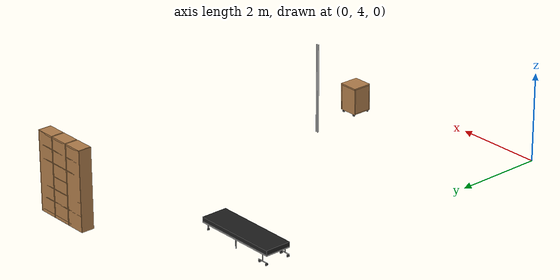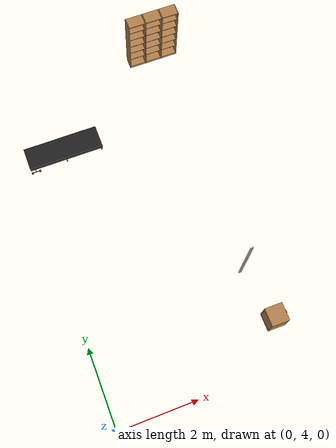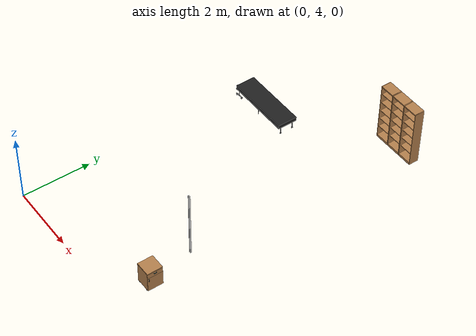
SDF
<sdf version="1.6">
 <world name="apartment">
  <model name="door_stopper_x05y09a">
   <link name="door_frame">
    <visual name="stopper">
     <pose>0.0225 0.0175 1.025 0 -0 0</pose>
     <geometry><box><size>0.01 0.035 2.05</size></box></geometry>
     <material>
      <script><uri>model://base_materials/color/scripts</uri><name>hsr_color/white</name></script>
     </material>
    </visual>
    <collision name="collision_frame_1">
     <pose>0.0225 0.0175 1.025 0 -0 0</pose>
     <geometry><box><size>0.01 0.035 2.05</size></box></geometry>
    </collision>
    <visual name="frame_2">
     <pose>-0.0225 0.0175 1.025 0 -0 0</pose>
     <geometry><box><size>0.01 0.035 2.05</size></box></geometry>
     <material>
      <script><uri>model://base_materials/color/scripts</uri><name>hsr_color/white</name></script>
     </material>
    </visual>
    <collision name="collision_frame_2">
     <pose>-0.0225 0.0175 1.025 0 -0 0</pose>
     <geometry><box><size>0.01 0.035 2.05</size></box></geometry>
    </collision>
   </link>
   <static>1</static>
   <pose>4.075 6.425 0 0 -0 0</pose>
  </model>
  <model name="wagon">
   <link name="link">
    <inertial>
     <mass>10</mass>
     <inertia><ixx>1</ixx><ixy>0</ixy><ixz>0</ixz><iyy>1</iyy><iyz>0</iyz><izz>1</izz></inertia>
    </inertial>
    <visual name="left_board">
     <pose>-0.2325 0.01 0.345 0 -0 0</pose>
     <geometry><box><size>0.415 0.02 0.59</size></box></geometry>
     <material>
      <script><uri>model://base_materials/wood/scripts/wood.material</uri><name>base_materials/wood</name></script>
     </material>
    </visual>
    <collision name="collision_left_board">
     <pose>-0.2325 0.01 0.345 0 -0 0</pose>
     <geometry><box><size>0.415 0.02 0.59</size></box></geometry>
    </collision>
    <visual name="right_board">
     <pose>-0.2325 0.4325 0.345 0 -0 0</pose>
     <geometry><box><size>0.415 0.02 0.59</size></box></geometry>
     <material>
      <script><uri>model://base_materials/wood/scripts/wood.material</uri><name>base_materials/wood</name></script>
     </material>
    </visual>
    <collision name="collision_right_board">
     <pose>-0.2325 0.4325 0.345 0 -0 0</pose>
     <geometry><box><size>0.415 0.02 0.59</size></box></geometry>
    </collision>
    <visual name="top_board">
     <pose>-0.22 0.2225 0.655 0 -0 0</pose>
     <geometry><box><size>0.44 0.445 0.03</size></box></geometry>
     <material>
      <script><uri>model://base_materials/wood/scripts/wood.material</uri><name>base_materials/wood</name></script>
     </material>
    </visual>
    <collision name="collision_top_board">
     <pose>-0.22 0.2225 0.655 0 -0 0</pose>
     <geometry><box><size>0.44 0.445 0.03</size></box></geometry>
    </collision>
    <visual name="back_board">
     <pose>-0.425 0.2225 0.345 0 -0 0</pose>
     <geometry><box><size>0.02 0.405 0.59</size></box></geometry>
     <material>
      <script><uri>model://base_materials/wood/scripts/wood.material</uri><name>base_materials/wood</name></script>
     </material>
    </visual>
    <collision name="collision_back_board">
     <pose>-0.425 0.2225 0.345 0 -0 0</pose>
     <geometry><box><size>0.02 0.405 0.59</size></box></geometry>
    </collision>
    <visual name="bottom_board">
     <pose>-0.2325 0.2225 0.06 0 -0 0</pose>
     <geometry><box><size>0.415 0.405 0.02</size></box></geometry>
     <material>
      <script><uri>model://base_materials/wood/scripts/wood.material</uri><name>base_materials/wood</name></script>
     </material>
    </visual>
    <collision name="collision_bottom_board">
     <pose>-0.2325 0.2225 0.06 0 -0 0</pose>
     <geometry><box><size>0.415 0.405 0.02</size></box></geometry>
    </collision>
    <visual name="1st_drawer">
     <pose>-0.0125 0.2225 0.57 0 -0 0</pose>
     <geometry><box><size>0.025 0.445 0.14</size></box></geometry>
     <material>
      <script><uri>model://base_materials/wood/scripts/wood.material</uri><name>base_materials/wood</name></script>
     </material>
    </visual>
    <collision name="collision_1st_drawer">
     <pose>-0.0125 0.2225 0.57 0 -0 0</pose>
     <geometry><box><size>0.025 0.445 0.14</size></box></geometry>
    </collision>
    <visual name="1st_drawer_handle_l1">
     <pose>0.0115 0.1895 0.6 3.14159 1.57079 3.14159</pose>
     <geometry><cylinder><radius>0.007</radius><length>0.023</length></cylinder></geometry>
     <material>
      <ambient>0.18431 0.3098 0.3098 1</ambient>
      <diffuse>0.18431 0.3098 0.3098 1</diffuse>
      <specular>0.1 0.1 0.1 1</specular>
     </material>
    </visual>
    <collision name="collision_1st_drawer_handle_l1">
     <pose>0.0115 0.1895 0.6 3.14159 1.57079 3.14159</pose>
     <geometry><cylinder><radius>0.007</radius><length>0.023</length></cylinder></geometry>
    </collision>
    <visual name="1st_drawer_handle_l2">
     <pose>0.023 0.1895 0.6 0 -0 0</pose>
     <geometry><sphere><radius>0.007</radius></sphere></geometry>
     <material>
      <ambient>0.18431 0.3098 0.3098 1</ambient>
      <diffuse>0.18431 0.3098 0.3098 1</diffuse>
      <specular>0.1 0.1 0.1 1</specular>
     </material>
    </visual>
    <collision name="collision_1st_drawer_handle_l2">
     <pose>0.023 0.1895 0.6 0 -0 0</pose>
     <geometry><sphere><radius>0.007</radius></sphere></geometry>
    </collision>
    <visual name="1st_drawer_handle_r1">
     <pose>0.0115 0.2555 0.6 3.14159 1.57079 3.14159</pose>
     <geometry><cylinder><radius>0.007</radius><length>0.023</length></cylinder></geometry>
     <material>
      <ambient>0.18431 0.3098 0.3098 1</ambient>
      <diffuse>0.18431 0.3098 0.3098 1</diffuse>
      <specular>0.1 0.1 0.1 1</specular>
     </material>
    </visual>
    <collision name="collision_1st_drawer_handle_r1">
     <pose>0.0115 0.2555 0.6 3.14159 1.57079 3.14159</pose>
     <geometry><cylinder><radius>0.007</radius><length>0.023</length></cylinder></geometry>
    </collision>
    <visual name="1st_drawer_handle_r2">
     <pose>0.023 0.2555 0.6 0 -0 0</pose>
     <geometry><sphere><radius>0.007</radius></sphere></geometry>
     <material>
      <ambient>0.18431 0.3098 0.3098 1</ambient>
      <diffuse>0.18431 0.3098 0.3098 1</diffuse>
      <specular>0.1 0.1 0.1 1</specular>
     </material>
    </visual>
    <collision name="collision_1st_drawer_handle_r2">
     <pose>0.023 0.2555 0.6 0 -0 0</pose>
     <geometry><sphere><radius>0.007</radius></sphere></geometry>
    </collision>
    <visual name="1st_drawer_handle_center">
     <pose>0.023 0.2225 0.6 1.5708 -0 0</pose>
     <geometry><cylinder><radius>0.007</radius><length>0.066</length></cylinder></geometry>
     <material>
      <ambient>0.18431 0.3098 0.3098 1</ambient>
      <diffuse>0.18431 0.3098 0.3098 1</diffuse>
      <specular>0.1 0.1 0.1 1</specular>
     </material>
    </visual>
    <collision name="collision_1st_drawer_handle_center">
     <pose>0.023 0.2225 0.6 1.5708 -0 0</pose>
     <geometry><cylinder><radius>0.007</radius><length>0.066</length></cylinder></geometry>
    </collision>
    <visual name="2nd_drawer">
     <pose>-0.0125 0.2225 0.275 0 -0 0</pose>
     <geometry><box><size>0.025 0.445 0.45</size></box></geometry>
     <material>
      <script><uri>model://base_materials/wood/scripts/wood.material</uri><name>base_materials/wood</name></script>
     </material>
    </visual>
    <collision name="collision_2nd_drawer">
     <pose>-0.0125 0.2225 0.275 0 -0 0</pose>
     <geometry><box><size>0.025 0.445 0.45</size></box></geometry>
    </collision>
    <visual name="2nd_drawer_handle_top1">
     <pose>0.0115 0.04 0.47 3.14159 1.57079 3.14159</pose>
     <geometry><cylinder><radius>0.007</radius><length>0.023</length></cylinder></geometry>
     <material>
      <ambient>0.18431 0.3098 0.3098 1</ambient>
      <diffuse>0.18431 0.3098 0.3098 1</diffuse>
      <specular>0.1 0.1 0.1 1</specular>
     </material>
    </visual>
    <collision name="collision_2nd_drawer_handle_top1">
     <pose>0.0115 0.04 0.47 3.14159 1.57079 3.14159</pose>
     <geometry><cylinder><radius>0.007</radius><length>0.023</length></cylinder></geometry>
    </collision>
    <visual name="2nd_drawer_handle_top2">
     <pose>0.023 0.04 0.47 0 -0 0</pose>
     <geometry><sphere><radius>0.007</radius></sphere></geometry>
     <material>
      <ambient>0.18431 0.3098 0.3098 1</ambient>
      <diffuse>0.18431 0.3098 0.3098 1</diffuse>
      <specular>0.1 0.1 0.1 1</specular>
     </material>
    </visual>
    <collision name="2nd_drawer_handle_top2">
     <pose>0.023 0.04 0.47 0 -0 0</pose>
     <geometry><sphere><radius>0.007</radius></sphere></geometry>
    </collision>
    <visual name="2nd_drawer_handle_bottom1">
     <pose>0.0115 0.04 0.404 3.14159 1.57079 3.14159</pose>
     <geometry><cylinder><radius>0.007</radius><length>0.023</length></cylinder></geometry>
     <material>
      <ambient>0.18431 0.3098 0.3098 1</ambient>
      <diffuse>0.18431 0.3098 0.3098 1</diffuse>
      <specular>0.1 0.1 0.1 1</specular>
     </material>
    </visual>
    <collision name="collision_2nd_drawer_handle_bottom1">
     <pose>0.0115 0.04 0.404 3.14159 1.57079 3.14159</pose>
     <geometry><cylinder><radius>0.007</radius><length>0.023</length></cylinder></geometry>
    </collision>
    <visual name="2nd_drawer_handle_bottom2">
     <pose>0.023 0.04 0.404 0 -0 0</pose>
     <geometry><sphere><radius>0.007</radius></sphere></geometry>
     <material>
      <ambient>0.18431 0.3098 0.3098 1</ambient>
      <diffuse>0.18431 0.3098 0.3098 1</diffuse>
      <specular>0.1 0.1 0.1 1</specular>
     </material>
    </visual>
    <collision name="2nd_drawer_handle_bottom2">
     <pose>0.023 0.04 0.404 0 -0 0</pose>
     <geometry><sphere><radius>0.007</radius></sphere></geometry>
    </collision>
    <visual name="2nd_drawer_handle_center">
     <pose>0.023 0.04 0.437 0 -0 0</pose>
     <geometry><cylinder><radius>0.007</radius><length>0.066</length></cylinder></geometry>
     <material>
      <ambient>0.18431 0.3098 0.3098 1</ambient>
      <diffuse>0.18431 0.3098 0.3098 1</diffuse>
      <specular>0.1 0.1 0.1 1</specular>
     </material>
    </visual>
    <collision name="collision_2nd_drawer_handle_center">
     <pose>0.023 0.04 0.437 0 -0 0</pose>
     <geometry><cylinder><radius>0.007</radius><length>0.066</length></cylinder></geometry>
    </collision>
    <visual name="left_front_caster">
     <pose>-0.07 0.025 0.025 3.14159 1.57079 3.14159</pose>
     <geometry><cylinder><radius>0.025</radius><length>0.035</length></cylinder></geometry>
     <material><script><name>Gazebo/Black</name><uri>__default__</uri></script></material>
    </visual>
    <collision name="collision_left_front_caster">
     <pose>-0.07 0.025 0.025 3.14159 1.57079 3.14159</pose>
     <geometry><cylinder><radius>0.025</radius><length>0.035</length></cylinder></geometry>
    </collision>
    <visual name="right_front_caster">
     <pose>-0.07 0.42 0.025 3.14159 1.57079 3.14159</pose>
     <geometry><cylinder><radius>0.025</radius><length>0.035</length></cylinder></geometry>
     <material><script><name>Gazebo/Black</name><uri>__default__</uri></script></material>
    </visual>
    <collision name="collision_right_front_caster">
     <pose>-0.07 0.42 0.025 3.14159 1.57079 3.14159</pose>
     <geometry><cylinder><radius>0.025</radius><length>0.035</length></cylinder></geometry>
    </collision>
    <visual name="left_back_caster">
     <pose>-0.39 0.025 0.025 3.14159 1.57079 3.14159</pose>
     <geometry><cylinder><radius>0.025</radius><length>0.035</length></cylinder></geometry>
     <material><script><name>Gazebo/Black</name><uri>__default__</uri></script></material>
    </visual>
    <collision name="collision_left_back_caster">
     <pose>-0.39 0.025 0.025 3.14159 1.57079 3.14159</pose>
     <geometry><cylinder><radius>0.025</radius><length>0.035</length></cylinder></geometry>
    </collision>
    <visual name="right_back_caster">
     <pose>-0.39 0.42 0.025 3.14159 1.57079 3.14159</pose>
     <geometry><cylinder><radius>0.025</radius><length>0.035</length></cylinder></geometry>
     <material><script><name>Gazebo/Black</name><uri>__default__</uri></script></material>
    </visual>
    <collision name="collision_right_back_caster">
     <pose>-0.39 0.42 0.025 3.14159 1.57079 3.14159</pose>
     <geometry><cylinder><radius>0.025</radius><length>0.035</length></cylinder></geometry>
    </collision>
    <velocity_decay><linear>0</linear><angular>0</angular></velocity_decay>
   </link>
   <static>1</static>
   <pose>4.5547 4.87094 0 0 -0 0</pose>
  </model>
  <model name="high_shelf01">
   <link name="link">
    <inertial>
     <mass>5</mass>
     <inertia><ixx>1</ixx><ixy>0</ixy><ixz>0</ixz><iyy>1</iyy><iyz>0</iyz><izz>1</izz></inertia>
    </inertial>
    <visual name="left_board">
     <pose>-0.1475 0.009 0.898 0 -0 0</pose>
     <geometry><box><size>0.295 0.018 1.796</size></box></geometry>
     <material>
      <script>
       <uri>model://base_materials/wood/scripts</uri>
       <uri>model://base_materials/wood/textures</uri>
       <name>base_materials/light_wood</name>
      </script>
     </material>
    </visual>
    <collision name="collision_left_board">
     <pose>-0.1475 0.009 0.898 0 -0 0</pose>
     <geometry><box><size>0.295 0.018 1.796</size></box></geometry>
    </collision>
    <visual name="right_board">
     <pose>-0.1475 0.441 0.898 0 -0 0</pose>
     <geometry><box><size>0.295 0.018 1.796</size></box></geometry>
     <material>
      <script>
       <uri>model://base_materials/wood/scripts</uri>
       <uri>model://base_materials/wood/textures</uri>
       <name>base_materials/light_wood</name>
      </script>
     </material>
    </visual>
    <collision name="collision_right_board">
     <pose>-0.1475 0.441 0.898 0 -0 0</pose>
     <geometry><box><size>0.295 0.018 1.796</size></box></geometry>
    </collision>
    <visual name="top_board">
     <pose>-0.1475 0.225 1.7825 0 -0 0</pose>
     <geometry><box><size>0.295 0.414 0.035</size></box></geometry>
     <material>
      <script>
       <uri>model://base_materials/wood/scripts</uri>
       <uri>model://base_materials/wood/textures</uri>
       <name>base_materials/light_wood</name>
      </script>
     </material>
    </visual>
    <collision name="collision_top_board">
     <pose>-0.1475 0.225 1.7825 0 -0 0</pose>
     <geometry><box><size>0.295 0.414 0.035</size></box></geometry>
    </collision>
    <visual name="1st_shelf">
     <pose>-0.162 0.225 1.51 0 -0 0</pose>
     <geometry><box><size>0.266 0.414 0.018</size></box></geometry>
     <material>
      <script>
       <uri>model://base_materials/wood/scripts</uri>
       <uri>model://base_materials/wood/textures</uri>
       <name>base_materials/light_wood</name>
      </script>
     </material>
    </visual>
    <collision name="collision_1st_shelf">
     <pose>-0.162 0.225 1.51 0 -0 0</pose>
     <geometry><box><size>0.266 0.414 0.018</size></box></geometry>
    </collision>
    <visual name="2nd_shelf">
     <pose>-0.162 0.225 1.22 0 -0 0</pose>
     <geometry><box><size>0.266 0.414 0.018</size></box></geometry>
     <material>
      <script>
       <uri>model://base_materials/wood/scripts</uri>
       <uri>model://base_materials/wood/textures</uri>
       <name>base_materials/light_wood</name>
      </script>
     </material>
    </visual>
    <collision name="collision_2nd_shelf">
     <pose>-0.162 0.225 1.22 0 -0 0</pose>
     <geometry><box><size>0.266 0.414 0.018</size></box></geometry>
    </collision>
    <visual name="3rd_shelf">
     <pose>-0.162 0.225 0.93 0 -0 0</pose>
     <geometry><box><size>0.266 0.414 0.018</size></box></geometry>
     <material>
      <script>
       <uri>model://base_materials/wood/scripts</uri>
       <uri>model://base_materials/wood/textures</uri>
       <name>base_materials/light_wood</name>
      </script>
     </material>
    </visual>
    <collision name="collision_3rd_shelf">
     <pose>-0.162 0.225 0.93 0 -0 0</pose>
     <geometry><box><size>0.266 0.414 0.018</size></box></geometry>
    </collision>
    <visual name="4th_shelf">
     <pose>-0.162 0.225 0.65 0 -0 0</pose>
     <geometry><box><size>0.266 0.414 0.018</size></box></geometry>
     <material>
      <script>
       <uri>model://base_materials/wood/scripts</uri>
       <uri>model://base_materials/wood/textures</uri>
       <name>base_materials/light_wood</name>
      </script>
     </material>
    </visual>
    <collision name="collision_4th_shelf">
     <pose>-0.162 0.225 0.65 0 -0 0</pose>
     <geometry><box><size>0.266 0.414 0.018</size></box></geometry>
    </collision>
    <visual name="5th_shelf">
     <pose>-0.162 0.225 0.36 0 -0 0</pose>
     <geometry><box><size>0.266 0.414 0.018</size></box></geometry>
     <material>
      <script>
       <uri>model://base_materials/wood/scripts</uri>
       <uri>model://base_materials/wood/textures</uri>
       <name>base_materials/light_wood</name>
      </script>
     </material>
    </visual>
    <collision name="collision_5th_shelf">
     <pose>-0.162 0.225 0.36 0 -0 0</pose>
     <geometry><box><size>0.266 0.414 0.018</size></box></geometry>
    </collision>
    <visual name="bottom_board">
     <pose>-0.1475 0.225 0.035 0 -0 0</pose>
     <geometry><box><size>0.295 0.414 0.07</size></box></geometry>
     <material>
      <script>
       <uri>model://base_materials/wood/scripts</uri>
       <uri>model://base_materials/wood/textures</uri>
       <name>base_materials/light_wood</name>
      </script>
     </material>
    </visual>
    <collision name="collision_bottom_board">
     <pose>-0.1475 0.225 0.035 0 -0 0</pose>
     <geometry><box><size>0.295 0.414 0.07</size></box></geometry>
    </collision>
    <visual name="back_board">
     <pose>-0.286 0.225 0.898 0 -0 0</pose>
     <geometry><box><size>0.018 0.414 1.796</size></box></geometry>
     <material>
      <script>
       <uri>model://base_materials/wood/scripts</uri>
       <uri>model://base_materials/wood/textures</uri>
       <name>base_materials/light_wood</name>
      </script>
     </material>
    </visual>
    <collision name="collision_back_board">
     <pose>-0.286 0.225 0.898 0 -0 0</pose>
     <geometry><box><size>0.018 0.414 1.796</size></box></geometry>
    </collision>
    <velocity_decay><linear>0</linear><angular>0</angular></velocity_decay>
   </link>
   <static>1</static>
   <pose>4.45 12.87 0 0 0 -1.5708</pose>
  </model>
  <model name="high_shelf02">
   <link name="link">
    <inertial>
     <mass>5</mass>
     <inertia><ixx>1</ixx><ixy>0</ixy><ixz>0</ixz><iyy>1</iyy><iyz>0</iyz><izz>1</izz></inertia>
    </inertial>
    <visual name="left_board">
     <pose>-0.1475 0.009 0.898 0 -0 0</pose>
     <geometry><box><size>0.295 0.018 1.796</size></box></geometry>
     <material>
      <script>
       <uri>model://base_materials/wood/scripts</uri>
       <uri>model://base_materials/wood/textures</uri>
       <name>base_materials/light_wood</name>
      </script>
     </material>
    </visual>
    <collision name="collision_left_board">
     <pose>-0.1475 0.009 0.898 0 -0 0</pose>
     <geometry><box><size>0.295 0.018 1.796</size></box></geometry>
    </collision>
    <visual name="right_board">
     <pose>-0.1475 0.441 0.898 0 -0 0</pose>
     <geometry><box><size>0.295 0.018 1.796</size></box></geometry>
     <material>
      <script>
       <uri>model://base_materials/wood/scripts</uri>
       <uri>model://base_materials/wood/textures</uri>
       <name>base_materials/light_wood</name>
      </script>
     </material>
    </visual>
    <collision name="collision_right_board">
     <pose>-0.1475 0.441 0.898 0 -0 0</pose>
     <geometry><box><size>0.295 0.018 1.796</size></box></geometry>
    </collision>
    <visual name="top_board">
     <pose>-0.1475 0.225 1.7825 0 -0 0</pose>
     <geometry><box><size>0.295 0.414 0.035</size></box></geometry>
     <material>
      <script>
       <uri>model://base_materials/wood/scripts</uri>
       <uri>model://base_materials/wood/textures</uri>
       <name>base_materials/light_wood</name>
      </script>
     </material>
    </visual>
    <collision name="collision_top_board">
     <pose>-0.1475 0.225 1.7825 0 -0 0</pose>
     <geometry><box><size>0.295 0.414 0.035</size></box></geometry>
    </collision>
    <visual name="1st_shelf">
     <pose>-0.162 0.225 1.51 0 -0 0</pose>
     <geometry><box><size>0.266 0.414 0.018</size></box></geometry>
     <material>
      <script>
       <uri>model://base_materials/wood/scripts</uri>
       <uri>model://base_materials/wood/textures</uri>
       <name>base_materials/light_wood</name>
      </script>
     </material>
    </visual>
    <collision name="collision_1st_shelf">
     <pose>-0.162 0.225 1.51 0 -0 0</pose>
     <geometry><box><size>0.266 0.414 0.018</size></box></geometry>
    </collision>
    <visual name="2nd_shelf">
     <pose>-0.162 0.225 1.22 0 -0 0</pose>
     <geometry><box><size>0.266 0.414 0.018</size></box></geometry>
     <material>
      <script>
       <uri>model://base_materials/wood/scripts</uri>
       <uri>model://base_materials/wood/textures</uri>
       <name>base_materials/light_wood</name>
      </script>
     </material>
    </visual>
    <collision name="collision_2nd_shelf">
     <pose>-0.162 0.225 1.22 0 -0 0</pose>
     <geometry><box><size>0.266 0.414 0.018</size></box></geometry>
    </collision>
    <visual name="3rd_shelf">
     <pose>-0.162 0.225 0.93 0 -0 0</pose>
     <geometry><box><size>0.266 0.414 0.018</size></box></geometry>
     <material>
      <script>
       <uri>model://base_materials/wood/scripts</uri>
       <uri>model://base_materials/wood/textures</uri>
       <name>base_materials/light_wood</name>
      </script>
     </material>
    </visual>
    <collision name="collision_3rd_shelf">
     <pose>-0.162 0.225 0.93 0 -0 0</pose>
     <geometry><box><size>0.266 0.414 0.018</size></box></geometry>
    </collision>
    <visual name="4th_shelf">
     <pose>-0.162 0.225 0.65 0 -0 0</pose>
     <geometry><box><size>0.266 0.414 0.018</size></box></geometry>
     <material>
      <script>
       <uri>model://base_materials/wood/scripts</uri>
       <uri>model://base_materials/wood/textures</uri>
       <name>base_materials/light_wood</name>
      </script>
     </material>
    </visual>
    <collision name="collision_4th_shelf">
     <pose>-0.162 0.225 0.65 0 -0 0</pose>
     <geometry><box><size>0.266 0.414 0.018</size></box></geometry>
    </collision>
    <visual name="5th_shelf">
     <pose>-0.162 0.225 0.36 0 -0 0</pose>
     <geometry><box><size>0.266 0.414 0.018</size></box></geometry>
     <material>
      <script>
       <uri>model://base_materials/wood/scripts</uri>
       <uri>model://base_materials/wood/textures</uri>
       <name>base_materials/light_wood</name>
      </script>
     </material>
    </visual>
    <collision name="collision_5th_shelf">
     <pose>-0.162 0.225 0.36 0 -0 0</pose>
     <geometry><box><size>0.266 0.414 0.018</size></box></geometry>
    </collision>
    <visual name="bottom_board">
     <pose>-0.1475 0.225 0.035 0 -0 0</pose>
     <geometry><box><size>0.295 0.414 0.07</size></box></geometry>
     <material>
      <script>
       <uri>model://base_materials/wood/scripts</uri>
       <uri>model://base_materials/wood/textures</uri>
       <name>base_materials/light_wood</name>
      </script>
     </material>
    </visual>
    <collision name="collision_bottom_board">
     <pose>-0.1475 0.225 0.035 0 -0 0</pose>
     <geometry><box><size>0.295 0.414 0.07</size></box></geometry>
    </collision>
    <visual name="back_board">
     <pose>-0.286 0.225 0.898 0 -0 0</pose>
     <geometry><box><size>0.018 0.414 1.796</size></box></geometry>
     <material>
      <script>
       <uri>model://base_materials/wood/scripts</uri>
       <uri>model://base_materials/wood/textures</uri>
       <name>base_materials/light_wood</name>
      </script>
     </material>
    </visual>
    <collision name="collision_back_board">
     <pose>-0.286 0.225 0.898 0 -0 0</pose>
     <geometry><box><size>0.018 0.414 1.796</size></box></geometry>
    </collision>
    <velocity_decay><linear>0</linear><angular>0</angular></velocity_decay>
   </link>
   <static>1</static>
   <pose>4 12.87 0 0 0 -1.5708</pose>
  </model>
  <model name="high_shelf03">
   <link name="link">
    <inertial>
     <mass>5</mass>
     <inertia><ixx>1</ixx><ixy>0</ixy><ixz>0</ixz><iyy>1</iyy><iyz>0</iyz><izz>1</izz></inertia>
    </inertial>
    <visual name="left_board">
     <pose>-0.1475 0.009 0.898 0 -0 0</pose>
     <geometry><box><size>0.295 0.018 1.796</size></box></geometry>
     <material>
      <script>
       <uri>model://base_materials/wood/scripts</uri>
       <uri>model://base_materials/wood/textures</uri>
       <name>base_materials/light_wood</name>
      </script>
     </material>
    </visual>
    <collision name="collision_left_board">
     <pose>-0.1475 0.009 0.898 0 -0 0</pose>
     <geometry><box><size>0.295 0.018 1.796</size></box></geometry>
    </collision>
    <visual name="right_board">
     <pose>-0.1475 0.441 0.898 0 -0 0</pose>
     <geometry><box><size>0.295 0.018 1.796</size></box></geometry>
     <material>
      <script>
       <uri>model://base_materials/wood/scripts</uri>
       <uri>model://base_materials/wood/textures</uri>
       <name>base_materials/light_wood</name>
      </script>
     </material>
    </visual>
    <collision name="collision_right_board">
     <pose>-0.1475 0.441 0.898 0 -0 0</pose>
     <geometry><box><size>0.295 0.018 1.796</size></box></geometry>
    </collision>
    <visual name="top_board">
     <pose>-0.1475 0.225 1.7825 0 -0 0</pose>
     <geometry><box><size>0.295 0.414 0.035</size></box></geometry>
     <material>
      <script>
       <uri>model://base_materials/wood/scripts</uri>
       <uri>model://base_materials/wood/textures</uri>
       <name>base_materials/light_wood</name>
      </script>
     </material>
    </visual>
    <collision name="collision_top_board">
     <pose>-0.1475 0.225 1.7825 0 -0 0</pose>
     <geometry><box><size>0.295 0.414 0.035</size></box></geometry>
    </collision>
    <visual name="1st_shelf">
     <pose>-0.162 0.225 1.51 0 -0 0</pose>
     <geometry><box><size>0.266 0.414 0.018</size></box></geometry>
     <material>
      <script>
       <uri>model://base_materials/wood/scripts</uri>
       <uri>model://base_materials/wood/textures</uri>
       <name>base_materials/light_wood</name>
      </script>
     </material>
    </visual>
    <collision name="collision_1st_shelf">
     <pose>-0.162 0.225 1.51 0 -0 0</pose>
     <geometry><box><size>0.266 0.414 0.018</size></box></geometry>
    </collision>
    <visual name="2nd_shelf">
     <pose>-0.162 0.225 1.22 0 -0 0</pose>
     <geometry><box><size>0.266 0.414 0.018</size></box></geometry>
     <material>
      <script>
       <uri>model://base_materials/wood/scripts</uri>
       <uri>model://base_materials/wood/textures</uri>
       <name>base_materials/light_wood</name>
      </script>
     </material>
    </visual>
    <collision name="collision_2nd_shelf">
     <pose>-0.162 0.225 1.22 0 -0 0</pose>
     <geometry><box><size>0.266 0.414 0.018</size></box></geometry>
    </collision>
    <visual name="3rd_shelf">
     <pose>-0.162 0.225 0.93 0 -0 0</pose>
     <geometry><box><size>0.266 0.414 0.018</size></box></geometry>
     <material>
      <script>
       <uri>model://base_materials/wood/scripts</uri>
       <uri>model://base_materials/wood/textures</uri>
       <name>base_materials/light_wood</name>
      </script>
     </material>
    </visual>
    <collision name="collision_3rd_shelf">
     <pose>-0.162 0.225 0.93 0 -0 0</pose>
     <geometry><box><size>0.266 0.414 0.018</size></box></geometry>
    </collision>
    <visual name="4th_shelf">
     <pose>-0.162 0.225 0.65 0 -0 0</pose>
     <geometry><box><size>0.266 0.414 0.018</size></box></geometry>
     <material>
      <script>
       <uri>model://base_materials/wood/scripts</uri>
       <uri>model://base_materials/wood/textures</uri>
       <name>base_materials/light_wood</name>
      </script>
     </material>
    </visual>
    <collision name="collision_4th_shelf">
     <pose>-0.162 0.225 0.65 0 -0 0</pose>
     <geometry><box><size>0.266 0.414 0.018</size></box></geometry>
    </collision>
    <visual name="5th_shelf">
     <pose>-0.162 0.225 0.36 0 -0 0</pose>
     <geometry><box><size>0.266 0.414 0.018</size></box></geometry>
     <material>
      <script>
       <uri>model://base_materials/wood/scripts</uri>
       <uri>model://base_materials/wood/textures</uri>
       <name>base_materials/light_wood</name>
      </script>
     </material>
    </visual>
    <collision name="collision_5th_shelf">
     <pose>-0.162 0.225 0.36 0 -0 0</pose>
     <geometry><box><size>0.266 0.414 0.018</size></box></geometry>
    </collision>
    <visual name="bottom_board">
     <pose>-0.1475 0.225 0.035 0 -0 0</pose>
     <geometry><box><size>0.295 0.414 0.07</size></box></geometry>
     <material>
      <script>
       <uri>model://base_materials/wood/scripts</uri>
       <uri>model://base_materials/wood/textures</uri>
       <name>base_materials/light_wood</name>
      </script>
     </material>
    </visual>
    <collision name="collision_bottom_board">
     <pose>-0.1475 0.225 0.035 0 -0 0</pose>
     <geometry><box><size>0.295 0.414 0.07</size></box></geometry>
    </collision>
    <visual name="back_board">
     <pose>-0.286 0.225 0.898 0 -0 0</pose>
     <geometry><box><size>0.018 0.414 1.796</size></box></geometry>
     <material>
      <script>
       <uri>model://base_materials/wood/scripts</uri>
       <uri>model://base_materials/wood/textures</uri>
       <name>base_materials/light_wood</name>
      </script>
     </material>
    </visual>
    <collision name="collision_back_board">
     <pose>-0.286 0.225 0.898 0 -0 0</pose>
     <geometry><box><size>0.018 0.414 1.796</size></box></geometry>
    </collision>
    <velocity_decay><linear>0</linear><angular>0</angular></velocity_decay>
   </link>
   <static>1</static>
   <pose>3.55 12.87 0 0 0 -1.5708</pose>
  </model>
  <model name="bed_0">
   <link name="link">
    <inertial>
     <mass>10</mass>
     <inertia><ixx>1</ixx><ixy>0</ixy><ixz>0</ixz><iyy>1</iyy><iyz>0</iyz><izz>1</izz></inertia>
    </inertial>
    <visual name="cushion">
     <pose>-0.295 -0.975 0.2875 0 -0 0</pose>
     <geometry><box><size>0.59 1.95 0.095</size></box></geometry>
     <material>
      <script>
       <uri>model://base_materials/cloth/scripts</uri>
       <uri>model://base_materials/cloth/textures</uri>
       <name>cloth/black</name>
      </script>
     </material>
    </visual>
    <collision name="collision_cushion">
     <pose>-0.295 -0.975 0.2875 0 -0 0</pose>
     <geometry><box><size>0.59 1.95 0.095</size></box></geometry>
    </collision>
    <visual name="top_frame">
     <pose>-0.295 -0.975 0.225 0 -0 0</pose>
     <geometry><box><size>0.59 1.95 0.03</size></box></geometry>
     <material>
      <script><uri>model://base_materials/color/scripts</uri><name>hsr_color/grey</name></script>
     </material>
    </visual>
    <collision name="collision_top_frame">
     <pose>-0.295 -0.975 0.225 0 -0 0</pose>
     <geometry><box><size>0.59 1.95 0.03</size></box></geometry>
    </collision>
    <visual name="right_front_pole">
     <pose>-0.075 -0.0125 0.125 0 -0 0</pose>
     <geometry><cylinder><radius>0.0125</radius><length>0.17</length></cylinder></geometry>
     <material>
      <script><uri>model://base_materials/color/scripts</uri><name>hsr_color/grey</name></script>
     </material>
    </visual>
    <collision name="collision_right_front_pole">
     <pose>-0.075 -0.0125 0.125 0 -0 0</pose>
     <geometry><cylinder><radius>0.0125</radius><length>0.17</length></cylinder></geometry>
    </collision>
    <visual name="right_front_caster">
     <pose>-0.075 -0.0125 0.02 0 1.57 0</pose>
     <geometry><cylinder><radius>0.02</radius><length>0.04</length></cylinder></geometry>
     <material><script><name>Gazebo/Black</name><uri>__default__</uri></script></material>
    </visual>
    <collision name="collision_right_front_caster">
     <pose>-0.075 -0.0125 0.02 0 1.57 0</pose>
     <geometry><cylinder><radius>0.02</radius><length>0.04</length></cylinder></geometry>
    </collision>
    <visual name="right_back_pole">
     <pose>-0.46 -0.0125 0.125 0 -0 0</pose>
     <geometry><cylinder><radius>0.0125</radius><length>0.17</length></cylinder></geometry>
     <material>
      <script><uri>model://base_materials/color/scripts</uri><name>hsr_color/grey</name></script>
     </material>
    </visual>
    <collision name="collision_right_back_pole">
     <pose>-0.46 -0.0125 0.125 0 -0 0</pose>
     <geometry><cylinder><radius>0.0125</radius><length>0.17</length></cylinder></geometry>
    </collision>
    <visual name="right_back_caster">
     <pose>-0.46 -0.0125 0.02 0 1.57 0</pose>
     <geometry><cylinder><radius>0.02</radius><length>0.04</length></cylinder></geometry>
     <material><script><name>Gazebo/Black</name><uri>__default__</uri></script></material>
    </visual>
    <collision name="collision_back_front_caster">
     <pose>-0.46 -0.0125 0.02 0 1.57 0</pose>
     <geometry><cylinder><radius>0.02</radius><length>0.04</length></cylinder></geometry>
    </collision>
    <visual name="center_front_pole">
     <pose>-0.0425 -0.975 0.105 0 -0 0</pose>
     <geometry><cylinder><radius>0.0125</radius><length>0.21</length></cylinder></geometry>
     <material>
      <script><uri>model://base_materials/color/scripts</uri><name>hsr_color/grey</name></script>
     </material>
    </visual>
    <collision name="collision_center_front_pole">
     <pose>-0.0425 -0.975 0.105 0 -0 0</pose>
     <geometry><cylinder><radius>0.0125</radius><length>0.17</length></cylinder></geometry>
    </collision>
    <visual name="center_back_pole">
     <pose>-0.5475 -0.975 0.105 0 -0 0</pose>
     <geometry><cylinder><radius>0.0125</radius><length>0.21</length></cylinder></geometry>
     <material>
      <script><uri>model://base_materials/color/scripts</uri><name>hsr_color/grey</name></script>
     </material>
    </visual>
    <collision name="collision_center_back_pole">
     <pose>-0.5475 -0.975 0.105 0 -0 0</pose>
     <geometry><cylinder><radius>0.0125</radius><length>0.17</length></cylinder></geometry>
    </collision>
    <visual name="left_front_horizon_pole">
     <pose>-0.01 -1.825 0.06 1.57 -0 0</pose>
     <geometry><cylinder><radius>0.01</radius><length>0.25</length></cylinder></geometry>
     <material>
      <script><uri>model://base_materials/color/scripts</uri><name>hsr_color/grey</name></script>
     </material>
    </visual>
    <collision name="collision_left_front_horizon_pole">
     <pose>-0.01 -1.825 0.06 1.57 -0 0</pose>
     <geometry><cylinder><radius>0.01</radius><length>0.25</length></cylinder></geometry>
    </collision>
    <visual name="left_front_vertical_pole">
     <pose>-0.01 -1.825 0.14 0 -0 0</pose>
     <geometry><cylinder><radius>0.01</radius><length>0.14</length></cylinder></geometry>
     <material>
      <script><uri>model://base_materials/color/scripts</uri><name>hsr_color/grey</name></script>
     </material>
    </visual>
    <collision name="collision_left_front_vertical_pole">
     <pose>-0.01 -1.825 0.14 0 -0 0</pose>
     <geometry><cylinder><radius>0.01</radius><length>0.14</length></cylinder></geometry>
    </collision>
    <visual name="left_front_caster_r">
     <pose>-0.02 -1.725 0.025 0 1.57 0</pose>
     <geometry><cylinder><radius>0.025</radius><length>0.04</length></cylinder></geometry>
     <material><script><name>Gazebo/Black</name><uri>__default__</uri></script></material>
    </visual>
    <collision name="collision_left_front_caster_r">
     <pose>-0.02 -1.725 0.025 0 1.57 0</pose>
     <geometry><cylinder><radius>0.025</radius><length>0.04</length></cylinder></geometry>
    </collision>
    <visual name="left_front_caster_l">
     <pose>-0.02 -1.925 0.025 0 1.57 0</pose>
     <geometry><cylinder><radius>0.025</radius><length>0.04</length></cylinder></geometry>
     <material><script><name>Gazebo/Black</name><uri>__default__</uri></script></material>
    </visual>
    <collision name="collision_left_front_caster_l">
     <pose>-0.02 -1.925 0.025 0 1.57 0</pose>
     <geometry><cylinder><radius>0.025</radius><length>0.04</length></cylinder></geometry>
    </collision>
    <visual name="left_back_horizon_pole">
     <pose>-0.58 -1.825 0.06 1.57 -0 0</pose>
     <geometry><cylinder><radius>0.01</radius><length>0.25</length></cylinder></geometry>
     <material>
      <script><uri>model://base_materials/color/scripts</uri><name>hsr_color/grey</name></script>
     </material>
    </visual>
    <collision name="collision_left_back_horizon_pole">
     <pose>-0.58 -1.825 0.06 1.57 -0 0</pose>
     <geometry><cylinder><radius>0.01</radius><length>0.25</length></cylinder></geometry>
    </collision>
    <visual name="left_back_vertical_pole">
     <pose>-0.58 -1.825 0.14 0 -0 0</pose>
     <geometry><cylinder><radius>0.01</radius><length>0.14</length></cylinder></geometry>
     <material>
      <script><uri>model://base_materials/color/scripts</uri><name>hsr_color/grey</name></script>
     </material>
    </visual>
    <collision name="collision_left_back_vertical_pole">
     <pose>-0.58 -1.825 0.14 0 -0 0</pose>
     <geometry><cylinder><radius>0.01</radius><length>0.14</length></cylinder></geometry>
    </collision>
    <visual name="left_back_caster_r">
     <pose>-0.57 -1.725 0.025 0 1.57 0</pose>
     <geometry><cylinder><radius>0.025</radius><length>0.04</length></cylinder></geometry>
     <material><script><name>Gazebo/Black</name><uri>__default__</uri></script></material>
    </visual>
    <collision name="collision_left_back_caster_r">
     <pose>-0.57 -1.725 0.025 0 1.57 0</pose>
     <geometry><cylinder><radius>0.025</radius><length>0.04</length></cylinder></geometry>
    </collision>
    <visual name="left_back_caster_l">
     <pose>-0.57 -1.925 0.025 0 1.57 0</pose>
     <geometry><cylinder><radius>0.025</radius><length>0.04</length></cylinder></geometry>
     <material><script><name>Gazebo/Black</name><uri>__default__</uri></script></material>
    </visual>
    <collision name="collision_left_back_caster_l">
     <pose>-0.57 -1.925 0.025 0 1.57 0</pose>
     <geometry><cylinder><radius>0.025</radius><length>0.04</length></cylinder></geometry>
    </collision>
    <velocity_decay><linear>0</linear><angular>0</angular></velocity_decay>
   </link>
   <static>1</static>
   <pose>2.00726 10.7312 0 0 0 -1.5708</pose>
  </model>
 </world>
</sdf>
